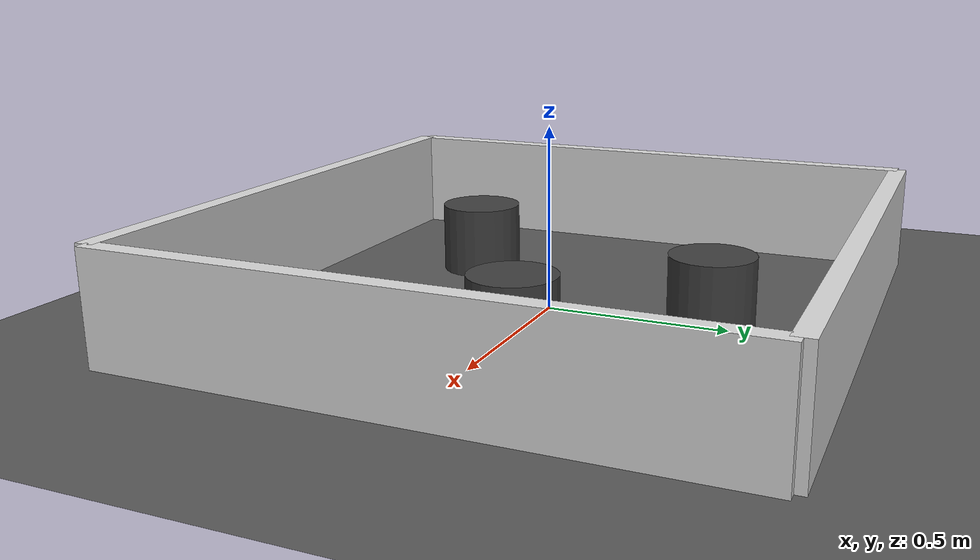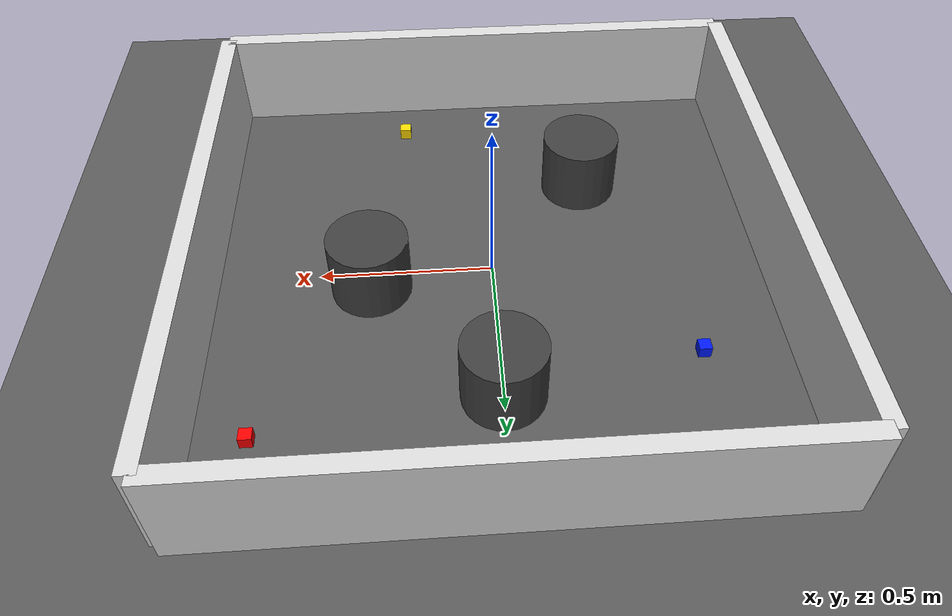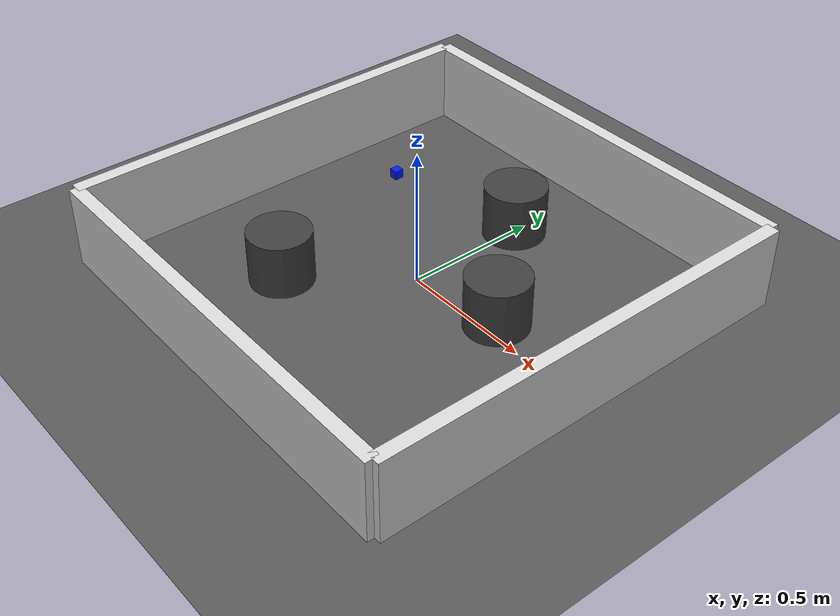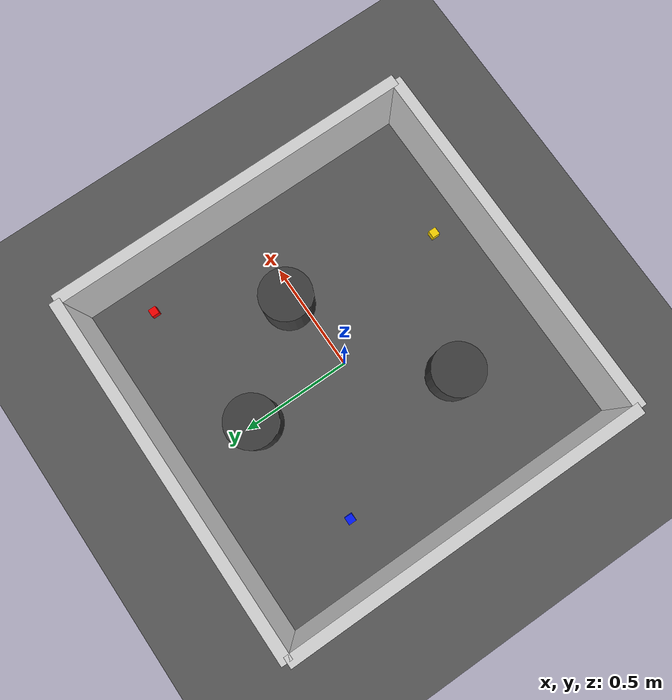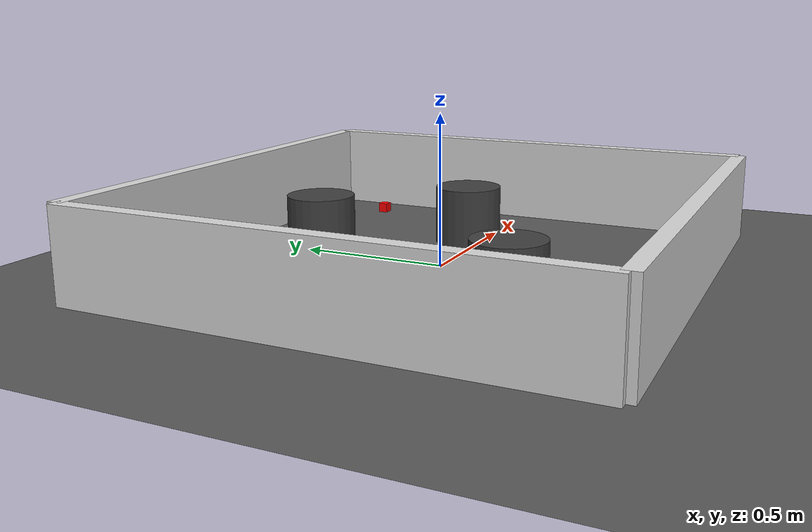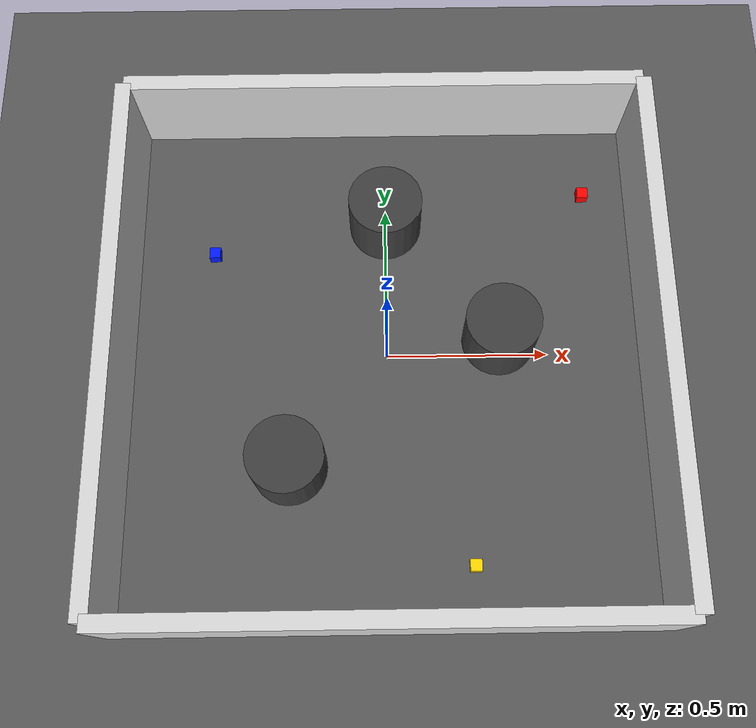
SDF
<?xml version="1.0"?>
<sdf version="1.6">
  <world name="imdl_arena">
    <plugin name="gazebo_ros_state" filename="libgazebo_ros_state.so">
      <update_rate>1.0</update_rate>
    </plugin>
    <scene><shadows>false</shadows></scene>
    <light name="sun" type="directional">
      <cast_shadows>false</cast_shadows>
      <pose>0 0 5 0 0 0</pose>
      <diffuse>0.8 0.8 0.8 1</diffuse>
      <specular>0.2 0.2 0.2 1</specular>
      <attenuation>
        <range>1000</range>
        <constant>0.9</constant>
        <linear>0.01</linear>
        <quadratic>0.001</quadratic>
      </attenuation>
      <direction>-0.5 0.1 -0.9</direction>
    </light>

    <model name="ground_plane">
      <static>true</static>
      <link name="link">
        <collision name="collision">
          <geometry>
            <plane>
              <normal>0 0 1</normal>
              <size>10 10</size>
            </plane>
          </geometry>
        </collision>
        <visual name="visual">
          <geometry>
            <plane>
              <normal>0 0 1</normal>
              <size>10 10</size>
            </plane>
          </geometry>
          <material>
            <ambient>0.35 0.35 0.35 1</ambient>
            <diffuse>0.35 0.35 0.35 1</diffuse>
          </material>
        </visual>
      </link>
    </model>

    <physics name="default_physics" type="ode">
      <max_step_size>0.001</max_step_size>
      <real_time_update_rate>1000</real_time_update_rate>
    </physics>

    <model name="arena_walls">
      <static>true</static>
      <link name="walls">
        <visual name="north_wall_visual">
          <pose>0 0.815 0.15 0 0 0</pose>
          <geometry><box><size>1.63 0.05 0.30</size></box></geometry>
          <material><ambient>0.85 0.85 0.85 1</ambient><diffuse>0.85 0.85 0.85 1</diffuse></material>
        </visual>
        <collision name="north_wall_collision">
          <pose>0 0.815 0.15 0 0 0</pose>
          <geometry><box><size>1.63 0.05 0.30</size></box></geometry>
        </collision>
        <visual name="south_wall_visual">
          <pose>0 -0.815 0.15 0 0 0</pose>
          <geometry><box><size>1.63 0.05 0.30</size></box></geometry>
          <material><ambient>0.85 0.85 0.85 1</ambient><diffuse>0.85 0.85 0.85 1</diffuse></material>
        </visual>
        <collision name="south_wall_collision">
          <pose>0 -0.815 0.15 0 0 0</pose>
          <geometry><box><size>1.63 0.05 0.30</size></box></geometry>
        </collision>
        <visual name="east_wall_visual">
          <pose>0.815 0 0.15 0 0 0</pose>
          <geometry><box><size>0.05 1.63 0.30</size></box></geometry>
          <material><ambient>0.85 0.85 0.85 1</ambient><diffuse>0.85 0.85 0.85 1</diffuse></material>
        </visual>
        <collision name="east_wall_collision">
          <pose>0.815 0 0.15 0 0 0</pose>
          <geometry><box><size>0.05 1.63 0.30</size></box></geometry>
        </collision>
        <visual name="west_wall_visual">
          <pose>-0.815 0 0.15 0 0 0</pose>
          <geometry><box><size>0.05 1.63 0.30</size></box></geometry>
          <material><ambient>0.85 0.85 0.85 1</ambient><diffuse>0.85 0.85 0.85 1</diffuse></material>
        </visual>
        <collision name="west_wall_collision">
          <pose>-0.815 0 0.15 0 0 0</pose>
          <geometry><box><size>0.05 1.63 0.30</size></box></geometry>
        </collision>
      </link>
    </model>

    <model name="obstacle_cylinder_1">
      <static>true</static>
      <pose>0.35 0.05 0.10 0 0 0</pose>
      <link name="link">
        <visual name="visual">
          <geometry><cylinder><radius>0.115</radius><length>0.20</length></cylinder></geometry>
          <material><ambient>0.25 0.25 0.25 1</ambient><diffuse>0.25 0.25 0.25 1</diffuse></material>
        </visual>
        <collision name="collision">
          <geometry><cylinder><radius>0.115</radius><length>0.20</length></cylinder></geometry>
        </collision>
      </link>
    </model>

    <model name="obstacle_cylinder_2">
      <static>true</static>
      <pose>-0.30 -0.35 0.10 0 0 0</pose>
      <link name="link">
        <visual name="visual">
          <geometry><cylinder><radius>0.115</radius><length>0.20</length></cylinder></geometry>
          <material><ambient>0.25 0.25 0.25 1</ambient><diffuse>0.25 0.25 0.25 1</diffuse></material>
        </visual>
        <collision name="collision">
          <geometry><cylinder><radius>0.115</radius><length>0.20</length></cylinder></geometry>
        </collision>
      </link>
    </model>

    <model name="obstacle_cylinder_3">
      <static>true</static>
      <pose>0.00 0.45 0.10 0 0 0</pose>
      <link name="link">
        <visual name="visual">
          <geometry><cylinder><radius>0.115</radius><length>0.20</length></cylinder></geometry>
          <material><ambient>0.25 0.25 0.25 1</ambient><diffuse>0.25 0.25 0.25 1</diffuse></material>
        </visual>
        <collision name="collision">
          <geometry><cylinder><radius>0.115</radius><length>0.20</length></cylinder></geometry>
        </collision>
      </link>
    </model>

    <model name="red_block">
      <static>false</static>
      <allow_auto_disable>true</allow_auto_disable>
      <pose>0.65 0.55 0.0175 0 0 0</pose>
      <link name="link">
        <gravity>false</gravity>
        <inertial>
          <mass>0.03</mass>
          <inertia>
            <ixx>0.000006125</ixx><iyy>0.000006125</iyy><izz>0.000006125</izz>
            <ixy>0</ixy><ixz>0</ixz><iyz>0</iyz>
          </inertia>
        </inertial>
        <visual name="visual">
          <geometry><box><size>0.035 0.035 0.035</size></box></geometry>
          <material><ambient>1 0 0 1</ambient><diffuse>1 0 0 1</diffuse></material>
        </visual>
        <collision name="collision">
          <geometry><box><size>0.035 0.035 0.035</size></box></geometry>
        </collision>
      </link>
    </model>

    <model name="blue_block">
      <static>false</static>
      <allow_auto_disable>true</allow_auto_disable>
      <pose>-0.55 0.35 0.0175 0 0 0</pose>
      <link name="link">
        <gravity>false</gravity>
        <inertial>
          <mass>0.03</mass>
          <inertia>
            <ixx>0.000006125</ixx><iyy>0.000006125</iyy><izz>0.000006125</izz>
            <ixy>0</ixy><ixz>0</ixz><iyz>0</iyz>
          </inertia>
        </inertial>
        <visual name="visual">
          <geometry><box><size>0.035 0.035 0.035</size></box></geometry>
          <material><ambient>0 0.1 1 1</ambient><diffuse>0 0.1 1 1</diffuse></material>
        </visual>
        <collision name="collision">
          <geometry><box><size>0.035 0.035 0.035</size></box></geometry>
        </collision>
      </link>
    </model>

    <model name="yellow_block">
      <static>false</static>
      <allow_auto_disable>true</allow_auto_disable>
      <pose>0.25 -0.65 0.0175 0 0 0</pose>
      <link name="link">
        <gravity>false</gravity>
        <inertial>
          <mass>0.03</mass>
          <inertia>
            <ixx>0.000006125</ixx><iyy>0.000006125</iyy><izz>0.000006125</izz>
            <ixy>0</ixy><ixz>0</ixz><iyz>0</iyz>
          </inertia>
        </inertial>
        <visual name="visual">
          <geometry><box><size>0.035 0.035 0.035</size></box></geometry>
          <material><ambient>1 0.85 0 1</ambient><diffuse>1 0.85 0 1</diffuse></material>
        </visual>
        <collision name="collision">
          <geometry><box><size>0.035 0.035 0.035</size></box></geometry>
        </collision>
      </link>
    </model>
  </world>
</sdf>
